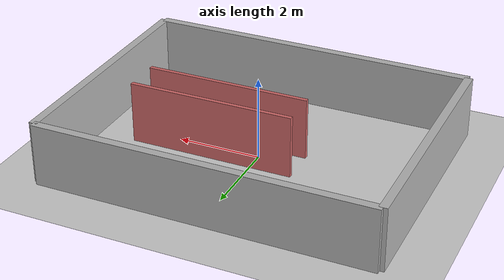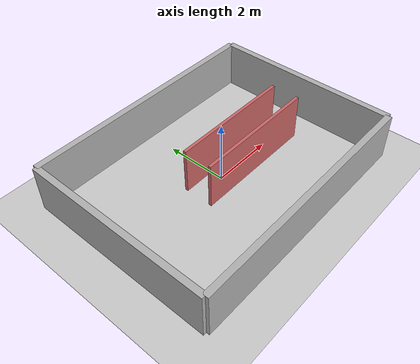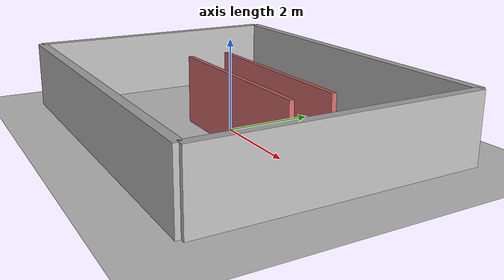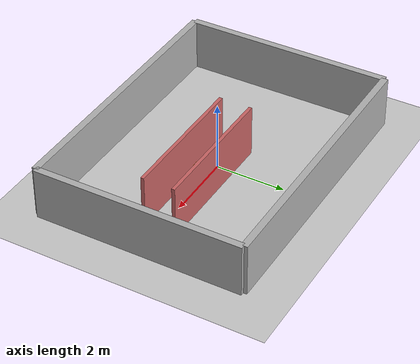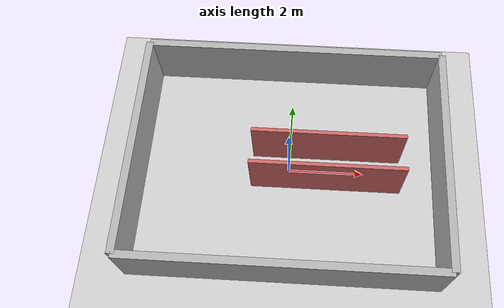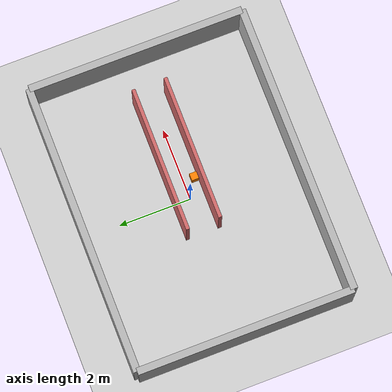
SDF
<?xml version="1.0" ?>
<sdf version="1.8">
  <world name="narrow_passage">
    <gravity>0 0 -9.81</gravity>

    <physics name="1ms" type="ode">
      <real_time_update_rate>1000</real_time_update_rate>
      <max_step_size>0.001</max_step_size>
      <real_time_factor>1</real_time_factor>
      <ode>
        <solver>
          <type>quick</type>
          <iters>150</iters>
          <precon_iters>0</precon_iters>
          <sor>1.3999999999999999</sor>
          <use_dynamic_moi_rescaling>true</use_dynamic_moi_rescaling>
        </solver>
        <constraints>
          <cfm>1.0000000000000001e-05</cfm>
          <erp>0.20000000000000001</erp>
          <contact_max_correcting_vel>2000</contact_max_correcting_vel>
          <contact_surface_layer>0.01</contact_surface_layer>
        </constraints>
      </ode>
    </physics>

    <plugin
      filename="gz-sim-physics-system"
      name="gz::sim::systems::Physics">
    </plugin>
    <plugin
      filename="gz-sim-user-commands-system"
      name="gz::sim::systems::UserCommands">
    </plugin>
    <plugin
      filename="gz-sim-scene-broadcaster-system"
      name="gz::sim::systems::SceneBroadcaster">
    </plugin>
    <plugin
      filename="gz-sim-sensors-system"
      name="gz::sim::systems::Sensors">
      <render_engine>ogre2</render_engine>
    </plugin>
    <plugin
      filename="gz-sim-imu-system"
      name="gz::sim::systems::Imu">
    </plugin>
    <plugin
      filename="gz-sim-contact-system"
      name="gz::sim::systems::Contact">
    </plugin>
    <scene>
      <ambient>0.4 0.4 0.4</ambient>
      <background>0.7 0.7 0.7</background>
    </scene>
    <light type="directional" name="sun">
      <pose>0 0 10 0 0 0</pose>
      <diffuse>0.8 0.8 0.8 1</diffuse>
      <specular>0.2 0.2 0.2 1</specular>
      <direction>-0.5 0.1 -1</direction>
    </light>

    <model name="ground_plane">
      <static>true</static>
      <link name="link">
        <collision name="collision">
          <geometry>
            <plane>
              <normal>0 0 1</normal>
            </plane>
          </geometry>
        </collision>
        <visual name="visual">
          <geometry>
            <plane>
              <normal>0 0 1</normal>
              <size>100 100</size>
            </plane>
          </geometry>
          <material>
            <ambient>0.8 0.8 0.8 1</ambient>
            <diffuse>0.8 0.8 0.8 1</diffuse>
          </material>
        </visual>
      </link>
    </model>

    <model name="wall_back">
      <static>true</static>
      <pose>4.0 0 0.75 0 0 0</pose>
      <link name="link">
        <collision name="collision"><geometry><box><size>0.2 6.0 1.5</size></box></geometry></collision>
        <visual name="visual"><geometry><box><size>0.2 6.0 1.5</size></box></geometry>
          <material><ambient>0.7 0.7 0.7</ambient><diffuse>0.7 0.7 0.7</diffuse></material>
        </visual>
      </link>
    </model>
    <model name="wall_front">
      <static>true</static>
      <pose>-4.0 0 0.75 0 0 0</pose>
      <link name="link">
        <collision name="collision"><geometry><box><size>0.2 6.0 1.5</size></box></geometry></collision>
        <visual name="visual"><geometry><box><size>0.2 6.0 1.5</size></box></geometry>
          <material><ambient>0.7 0.7 0.7</ambient><diffuse>0.7 0.7 0.7</diffuse></material>
        </visual>
      </link>
    </model>
    <model name="wall_left">
      <static>true</static>
      <pose>0 3.0 0.75 0 0 1.5708</pose>
      <link name="link">
        <collision name="collision"><geometry><box><size>0.2 8.0 1.5</size></box></geometry></collision>
        <visual name="visual"><geometry><box><size>0.2 8.0 1.5</size></box></geometry>
          <material><ambient>0.7 0.7 0.7</ambient><diffuse>0.7 0.7 0.7</diffuse></material>
        </visual>
      </link>
    </model>
    <model name="wall_right">
      <static>true</static>
      <pose>0 -3.0 0.75 0 0 1.5708</pose>
      <link name="link">
        <collision name="collision"><geometry><box><size>0.2 8.0 1.5</size></box></geometry></collision>
        <visual name="visual"><geometry><box><size>0.2 8.0 1.5</size></box></geometry>
          <material><ambient>0.7 0.7 0.7</ambient><diffuse>0.7 0.7 0.7</diffuse></material>
        </visual>
      </link>
    </model>

    <model name="corridor_left">
      <static>true</static>
      <pose>1.0 0.45 0.75 0 0 0</pose>
      <link name="link">
        <collision name="collision"><geometry><box><size>4.0 0.1 1.5</size></box></geometry></collision>
        <visual name="visual"><geometry><box><size>4.0 0.1 1.5</size></box></geometry>
          <material><ambient>0.8 0.4 0.4</ambient><diffuse>0.8 0.4 0.4</diffuse></material>
        </visual>
      </link>
    </model>
    <model name="corridor_right">
      <static>true</static>
      <pose>1.0 -0.45 0.75 0 0 0</pose>
      <link name="link">
        <collision name="collision"><geometry><box><size>4.0 0.1 1.5</size></box></geometry></collision>
        <visual name="visual"><geometry><box><size>4.0 0.1 1.5</size></box></geometry>
          <material><ambient>0.8 0.4 0.4</ambient><diffuse>0.8 0.4 0.4</diffuse></material>
        </visual>
      </link>
    </model>

    <model name="box_obstacle">
      <static>true</static>
      <pose>0.5 -0.30 0.15 0 0 0</pose>
      <link name="link">
        <collision name="collision"><geometry><box><size>0.2 0.2 0.3</size></box></geometry></collision>
        <visual name="visual"><geometry><box><size>0.2 0.2 0.3</size></box></geometry>
          <material><ambient>1.0 0.5 0.0</ambient><diffuse>1.0 0.5 0.0</diffuse></material>
        </visual>
      </link>
    </model>
  </world>
</sdf>
